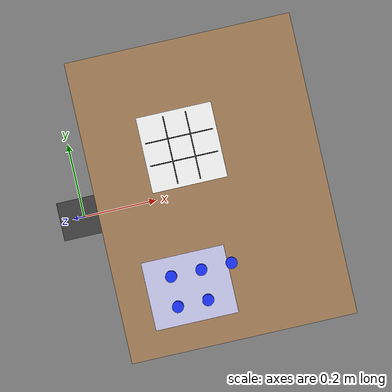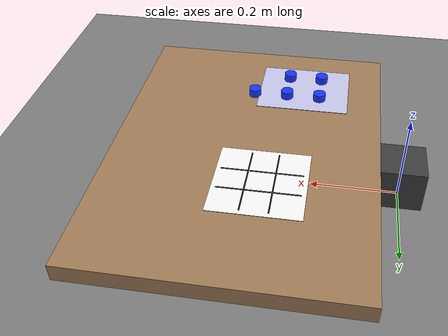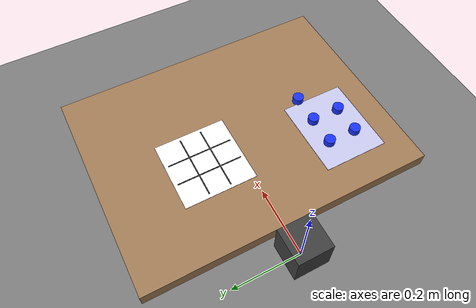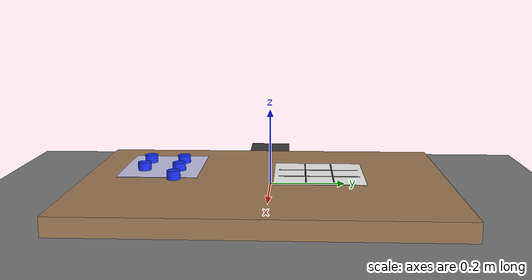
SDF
<?xml version="1.0"?>
<sdf version="1.10">
  <world name="tictactoe">

    <physics name="bullet" type="bullet">
      <max_step_size>0.001</max_step_size>
      <real_time_factor>1.0</real_time_factor>
      <real_time_update_rate>1000</real_time_update_rate>
    </physics>

    <plugin filename="gz-sim-physics-system" name="gz::sim::systems::Physics">
      <engine>
        <filename>gz-physics-bullet-featherstone-plugin</filename>
      </engine>
    </plugin>
    <plugin filename="gz-sim-user-commands-system" name="gz::sim::systems::UserCommands"/>
    <plugin filename="gz-sim-scene-broadcaster-system" name="gz::sim::systems::SceneBroadcaster"/>
    <plugin filename="gz-sim-sensors-system" name="gz::sim::systems::Sensors">
      <render_engine>ogre2</render_engine>
    </plugin>

    <light name="sun" type="directional">
      <pose>0 0 10 0 0 0</pose>
      <cast_shadows>true</cast_shadows>
      <intensity>1.0</intensity>
      <direction>-0.5 0.1 -0.9</direction>
      <diffuse>1 1 1 1</diffuse>
      <specular>0.5 0.5 0.5 1</specular>
    </light>

    <model name="ground_plane">
      <static>true</static>
      <link name="link">
        <collision name="collision">
          <geometry><plane><normal>0 0 1</normal><size>10 10</size></plane></geometry>
        </collision>
        <visual name="visual">
          <geometry><plane><normal>0 0 1</normal><size>10 10</size></plane></geometry>
          <material>
            <ambient>0.4 0.4 0.4 1</ambient>
            <diffuse>0.5 0.5 0.5 1</diffuse>
          </material>
        </visual>
      </link>
    </model>

    <!-- Pedestal under the UR3e base. Top at z=0.10 so the arm mounting flange sits there. -->
    <model name="pedestal">
      <static>true</static>
      <pose>0 0 0.05 0 0 0</pose>
      <link name="link">
        <collision name="collision">
          <geometry><box><size>0.10 0.10 0.10</size></box></geometry>
        </collision>
        <visual name="visual">
          <geometry><box><size>0.10 0.10 0.10</size></box></geometry>
          <material>
            <ambient>0.2 0.2 0.2 1</ambient>
            <diffuse>0.25 0.25 0.25 1</diffuse>
          </material>
        </visual>
      </link>
    </model>

    <!-- Table next to the pedestal, top flush at z=0.10. -->
    <model name="table">
      <static>true</static>
      <pose>0.35 0 0.08 0 0 0</pose>
      <link name="link">
        <collision name="collision">
          <geometry><box><size>0.60 0.80 0.04</size></box></geometry>
        </collision>
        <visual name="visual">
          <geometry><box><size>0.60 0.80 0.04</size></box></geometry>
          <material>
            <ambient>0.55 0.40 0.25 1</ambient>
            <diffuse>0.65 0.50 0.35 1</diffuse>
          </material>
        </visual>
      </link>
    </model>

    <!-- Tic-tac-toe board, visual only (rests flush on table top, +1mm to avoid z-fight). -->
    <model name="board">
      <static>true</static>
      <pose>0.30 0.12 0.101 0 0 0</pose>
      <link name="link">
        <visual name="surface">
          <geometry><box><size>0.20 0.20 0.001</size></box></geometry>
          <material>
            <ambient>0.95 0.95 0.95 1</ambient>
            <diffuse>1.0 1.0 1.0 1</diffuse>
          </material>
        </visual>
        <visual name="grid_v1">
          <pose>-0.03 0 0.001 0 0 0</pose>
          <geometry><box><size>0.003 0.18 0.001</size></box></geometry>
          <material><ambient>0 0 0 1</ambient><diffuse>0 0 0 1</diffuse></material>
        </visual>
        <visual name="grid_v2">
          <pose>0.03 0 0.001 0 0 0</pose>
          <geometry><box><size>0.003 0.18 0.001</size></box></geometry>
          <material><ambient>0 0 0 1</ambient><diffuse>0 0 0 1</diffuse></material>
        </visual>
        <visual name="grid_h1">
          <pose>0 -0.03 0.001 0 0 0</pose>
          <geometry><box><size>0.18 0.003 0.001</size></box></geometry>
          <material><ambient>0 0 0 1</ambient><diffuse>0 0 0 1</diffuse></material>
        </visual>
        <visual name="grid_h2">
          <pose>0 0.03 0.001 0 0 0</pose>
          <geometry><box><size>0.18 0.003 0.001</size></box></geometry>
          <material><ambient>0 0 0 1</ambient><diffuse>0 0 0 1</diffuse></material>
        </visual>
      </link>
    </model>

    <!-- Tray rectangle, visual only. Tokens sit on the table inside the tray footprint. -->
    <model name="tray">
      <static>true</static>
      <pose>0.24 -0.24 0.101 0 0 0</pose>
      <link name="link">
        <visual name="visual">
          <geometry><box><size>0.22 0.18 0.001</size></box></geometry>
          <material>
            <ambient>0.7 0.7 0.85 1</ambient>
            <diffuse>0.8 0.8 0.95 1</diffuse>
          </material>
        </visual>
      </link>
    </model>

    <!-- Five blue tokens. 1.5cm radius, 2cm tall, mass 0.02kg. 8cm spacing in a 3+2 grid. -->
    <!-- Token center sits at z=0.11 so cylinder bottom (z=0.10) rests on the table top. -->
    <model name="blue_token_0">
      <pose>0.20 -0.20 0.11 0 0 0</pose>
      <link name="token_link">
        <inertial>
          <mass>0.02</mass>
          <inertia><ixx>5.5e-6</ixx><iyy>5.5e-6</iyy><izz>4.5e-6</izz><ixy>0</ixy><ixz>0</ixz><iyz>0</iyz></inertia>
        </inertial>
        <collision name="collision">
          <geometry><cylinder><radius>0.015</radius><length>0.02</length></cylinder></geometry>
          <surface><friction><ode><mu>0.6</mu><mu2>0.6</mu2></ode></friction></surface>
        </collision>
        <visual name="visual">
          <geometry><cylinder><radius>0.015</radius><length>0.02</length></cylinder></geometry>
          <material><ambient>0.05 0.10 0.85 1</ambient><diffuse>0.10 0.20 1.0 1</diffuse></material>
        </visual>
      </link>
    </model>

    <model name="blue_token_1">
      <pose>0.28 -0.20 0.11 0 0 0</pose>
      <link name="token_link">
        <inertial>
          <mass>0.02</mass>
          <inertia><ixx>5.5e-6</ixx><iyy>5.5e-6</iyy><izz>4.5e-6</izz><ixy>0</ixy><ixz>0</ixz><iyz>0</iyz></inertia>
        </inertial>
        <collision name="collision">
          <geometry><cylinder><radius>0.015</radius><length>0.02</length></cylinder></geometry>
          <surface><friction><ode><mu>0.6</mu><mu2>0.6</mu2></ode></friction></surface>
        </collision>
        <visual name="visual">
          <geometry><cylinder><radius>0.015</radius><length>0.02</length></cylinder></geometry>
          <material><ambient>0.05 0.10 0.85 1</ambient><diffuse>0.10 0.20 1.0 1</diffuse></material>
        </visual>
      </link>
    </model>

    <model name="blue_token_2">
      <pose>0.36 -0.20 0.11 0 0 0</pose>
      <link name="token_link">
        <inertial>
          <mass>0.02</mass>
          <inertia><ixx>5.5e-6</ixx><iyy>5.5e-6</iyy><izz>4.5e-6</izz><ixy>0</ixy><ixz>0</ixz><iyz>0</iyz></inertia>
        </inertial>
        <collision name="collision">
          <geometry><cylinder><radius>0.015</radius><length>0.02</length></cylinder></geometry>
          <surface><friction><ode><mu>0.6</mu><mu2>0.6</mu2></ode></friction></surface>
        </collision>
        <visual name="visual">
          <geometry><cylinder><radius>0.015</radius><length>0.02</length></cylinder></geometry>
          <material><ambient>0.05 0.10 0.85 1</ambient><diffuse>0.10 0.20 1.0 1</diffuse></material>
        </visual>
      </link>
    </model>

    <model name="blue_token_3">
      <pose>0.20 -0.28 0.11 0 0 0</pose>
      <link name="token_link">
        <inertial>
          <mass>0.02</mass>
          <inertia><ixx>5.5e-6</ixx><iyy>5.5e-6</iyy><izz>4.5e-6</izz><ixy>0</ixy><ixz>0</ixz><iyz>0</iyz></inertia>
        </inertial>
        <collision name="collision">
          <geometry><cylinder><radius>0.015</radius><length>0.02</length></cylinder></geometry>
          <surface><friction><ode><mu>0.6</mu><mu2>0.6</mu2></ode></friction></surface>
        </collision>
        <visual name="visual">
          <geometry><cylinder><radius>0.015</radius><length>0.02</length></cylinder></geometry>
          <material><ambient>0.05 0.10 0.85 1</ambient><diffuse>0.10 0.20 1.0 1</diffuse></material>
        </visual>
      </link>
    </model>

    <model name="blue_token_4">
      <pose>0.28 -0.28 0.11 0 0 0</pose>
      <link name="token_link">
        <inertial>
          <mass>0.02</mass>
          <inertia><ixx>5.5e-6</ixx><iyy>5.5e-6</iyy><izz>4.5e-6</izz><ixy>0</ixy><ixz>0</ixz><iyz>0</iyz></inertia>
        </inertial>
        <collision name="collision">
          <geometry><cylinder><radius>0.015</radius><length>0.02</length></cylinder></geometry>
          <surface><friction><ode><mu>0.6</mu><mu2>0.6</mu2></ode></friction></surface>
        </collision>
        <visual name="visual">
          <geometry><cylinder><radius>0.015</radius><length>0.02</length></cylinder></geometry>
          <material><ambient>0.05 0.10 0.85 1</ambient><diffuse>0.10 0.20 1.0 1</diffuse></material>
        </visual>
      </link>
    </model>

  </world>
</sdf>
